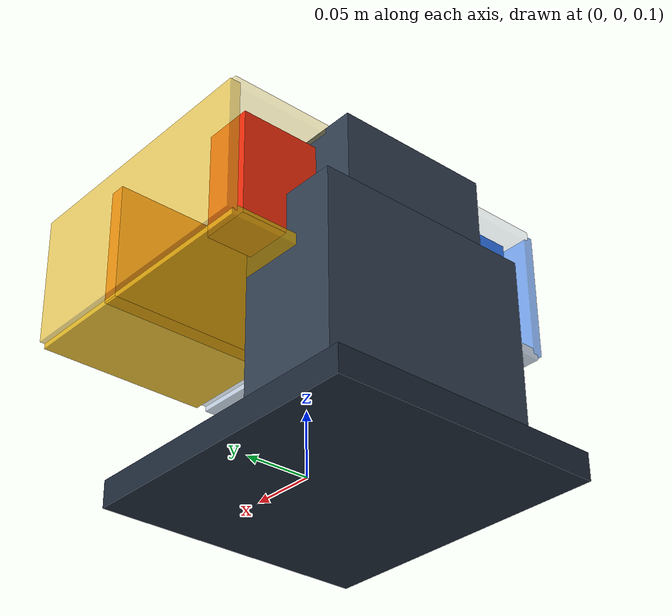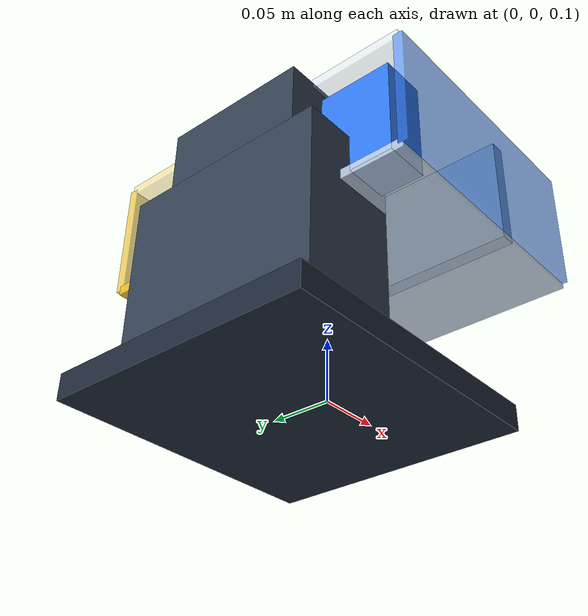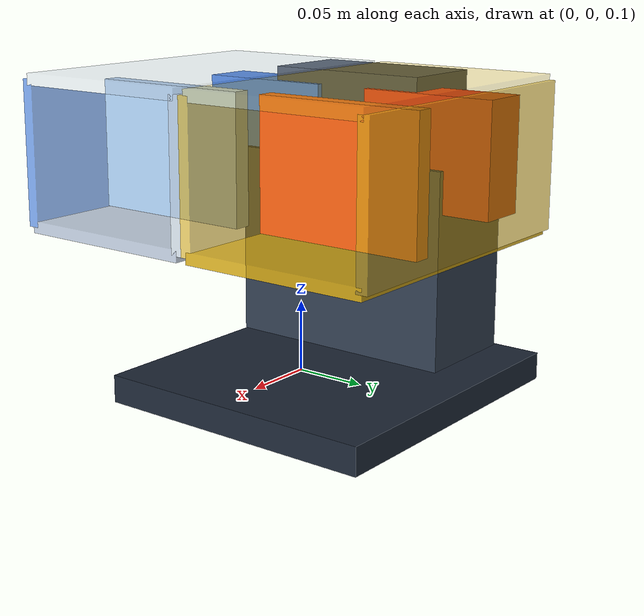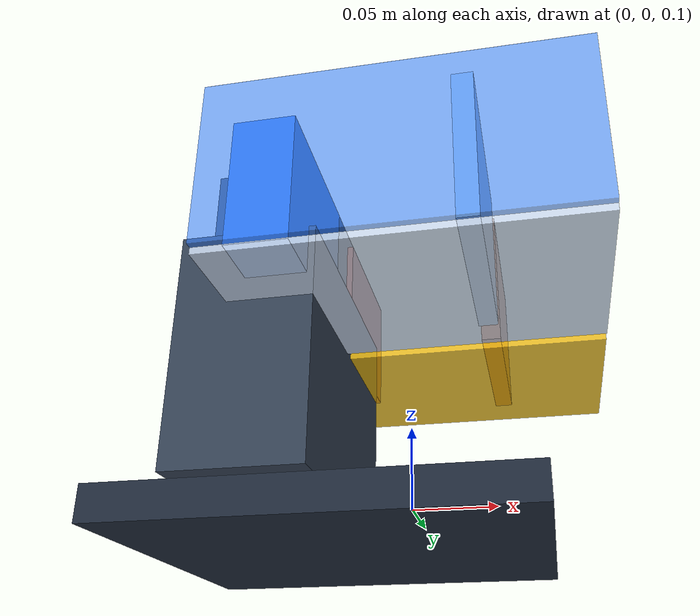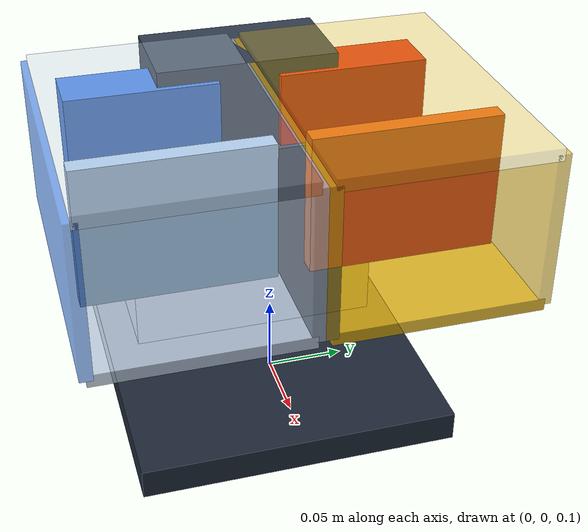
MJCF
<mujoco model="idc2026_user_compact_shooter">
  <compiler angle="radian" autolimits="true"/>

  <!--
    默认物理参数：
    contype/conaffinity 控制碰撞类别；condim=6 保留完整接触摩擦维度；
    friction 的三个数分别对应 MuJoCo 的切向、扭转和滚动摩擦参数。
    solref/solimp 控制接触约束的柔顺程度和收敛方式。
  -->
  <default>
    <geom contype="1" conaffinity="1" condim="6" priority="1"
          friction="0.35 0.02 0.002" solref="0.008 1"
          solimp="0.96 0.99 0.001 0.5 2"/>
    <joint damping="0.08" armature="0.001"/>
  </default>

  <worldbody>
    <!--
      mount_root 没有 joint，因此它相对于 Go2 base_link 是刚性固定的。
      这也是参赛机构的合法挂载根。下面的所有 body 都是它的子 body，
      所以它们会一起随 Go2 的平移和旋转运动。
    -->
    <body name="mount_root" pos="0 0 0">
      <!-- 底板和支架：把机构的质量、碰撞和视觉连接传回 Go2。 -->
      <geom name="mount_plate" type="box" pos="-0.035 0 0.085"
            size="0.115 0.105 0.010" mass="0.060"
            contype="0" conaffinity="0" rgba="0.12 0.16 0.22 1"/>
      <geom name="mount_bracket" type="box" pos="-0.080 0 0.175"
            size="0.040 0.085 0.070" mass="0.035"
            contype="0" conaffinity="0" rgba="0.20 0.25 0.32 1"/>
      <!--
        实体桅杆：连接 base_link 和云台铰链。它不仅是视觉上的支柱，也把
        云台的质量和推球反作用力通过真实刚体链传回 Go2，避免机构看起来
        像漂浮在机器狗旁边。
      -->
      <geom name="turret_mast" type="box" pos="-0.080 0 0.245"
            size="0.032 0.060 0.060" mass="0.045"
            contype="0" conaffinity="0" rgba="0.20 0.25 0.32 1"/>

      <!--
        两级云台：
        turret_pitch_joint 绕局部 Y 轴俯仰，决定球路高度；
        turret_yaw_joint 绕局部 Z 轴偏航，决定球路水平左右方向。
        两个 joint 都有范围、阻尼和 armature，范围会由 compiler 自动限制。
      -->
      <body name="turret_pitch_body" pos="-0.080 0 0.255">
        <joint name="turret_pitch_joint" type="hinge" axis="0 1 0"
               range="-0.75 1.00" damping="0.25" armature="0.006"/>
        <geom name="pitch_hub" type="cylinder" pos="0 0 0"
              size="0.032 0.020" mass="0.025"
              contype="0" conaffinity="0" rgba="0.18 0.40 0.62 1"/>

        <body name="turret_yaw_body" pos="0 0 0">
          <joint name="turret_yaw_joint" type="hinge" axis="0 0 1"
                 range="-3.00 3.00" damping="0.35" armature="0.010"/>
          <geom name="yaw_hub" type="cylinder" pos="0 0 0"
                size="0.030 0.014" mass="0.020"
                contype="0" conaffinity="0" rgba="0.18 0.40 0.62 1"/>

          <!--
            两个发射管固定在偏航云台上。开口距离转轴很短，保证机构紧凑；
            yellow/white 只是两条物理通道的名字，不代表本次 reset 时目标
            一定在固定槽位，目标颜色由官方 observation 决定。
          -->
          <body name="yellow_launcher" pos="0 0.070 0">
            <!-- 黄色通道的底板、顶板和两侧导向壁。顶板透明且不参与碰撞，
                 方便在 viewer 中看到球；底板和侧壁形成真实接触边界。 -->
            <geom name="yellow_tube_floor" type="box" pos="0.095 0 -0.050"
                  size="0.105 0.066 0.004" mass="0.008"
                  friction="0 0 0"
                  rgba="0.92 0.73 0.10 0.88"/>
            <geom name="yellow_tube_roof" type="box" pos="0.095 0 0.050"
                  size="0.105 0.066 0.004" mass="0.006"
                  friction="0 0 0"
                  contype="0" conaffinity="0" rgba="0.92 0.73 0.10 0.32"/>
            <geom name="yellow_tube_left" type="box" pos="0.095 0.066 0"
                  size="0.105 0.004 0.050" mass="0.006"
                  friction="0 0 0"
                  rgba="0.92 0.73 0.10 0.62"/>
            <geom name="yellow_tube_right" type="box" pos="0.095 -0.066 0"
                  size="0.105 0.004 0.050" mass="0.006"
                  friction="0 0 0"
                  rgba="0.92 0.73 0.10 0.62"/>
            <!--
              site 是官方 reset 放置 yellow_1/yellow_2 的参考点。它不是
              关节，也不会在运行时“吸住”球；reset 后球就是普通 free body。
            -->
            <site name="yellow_slot" type="sphere" pos="0.060 0 0"
                  size="0.006" rgba="1 0.2 0 0.35"/>
            <body name="yellow_pusher_body" pos="0.0 0 0">
              <!-- 推杆沿局部 +X 平移，把球从通道后方推向开口。 -->
              <joint name="yellow_pusher_joint" type="slide" axis="1 0 0"
                     range="0 0.230" damping="0.10" armature="0.001"/>
              <geom name="yellow_pusher_plate" type="box" pos="0.018 0 0"
                    size="0.018 0.050 0.040" mass="0.012"
                    rgba="0.95 0.18 0.05 1"/>
            </body>
            <!--
              挡门沿局部 +Z 抬起。它位于球释放点后方；如果太靠前，抬门时
              可能直接撞球，把球打向目标上沿。当前后移后，推杆先预压、再
              抬门、最后推进，形成较低的物理弹道。
            -->
            <body name="yellow_gate_body" pos="0.130 0 0">
              <joint name="yellow_gate_joint" type="slide" axis="0 0 1"
                     range="0 0.280" damping="0.18" armature="0.002"/>
              <geom name="yellow_gate_pin" type="box" pos="0 0 0"
                    size="0.006 0.060 0.045" mass="0.006"
                    rgba="1.00 0.40 0.08 0.94"/>
            </body>
          </body>

          <body name="white_launcher" pos="0 -0.070 0">
            <!-- 白色通道与黄色通道结构相同，只是横向位置和颜色不同。 -->
            <geom name="white_tube_floor" type="box" pos="0.095 0 -0.050"
                  size="0.105 0.066 0.004" mass="0.008"
                  friction="0 0 0"
                  rgba="0.80 0.86 0.94 0.88"/>
            <geom name="white_tube_roof" type="box" pos="0.095 0 0.050"
                  size="0.105 0.066 0.004" mass="0.006"
                  friction="0 0 0"
                  contype="0" conaffinity="0" rgba="0.80 0.86 0.94 0.32"/>
            <geom name="white_tube_left" type="box" pos="0.095 0.066 0"
                  size="0.105 0.004 0.050" mass="0.006"
                  friction="0 0 0"
                  rgba="0.80 0.86 0.94 0.62"/>
            <geom name="white_tube_right" type="box" pos="0.095 -0.066 0"
                  size="0.105 0.004 0.050" mass="0.006"
                  friction="0 0 0"
                  rgba="0.20 0.48 0.95 0.62"/>
            <!-- reset 时白球通过这个 site 放入通道；运行中 site 不控制球。 -->
            <site name="white_slot" type="sphere" pos="0.060 0 0"
                  size="0.006" rgba="0.2 0.4 1 0.35"/>
            <body name="white_pusher_body" pos="0.0 0 0">
              <!-- 白色通道的实体推杆，控制器名称为 user_white_pusher。 -->
              <joint name="white_pusher_joint" type="slide" axis="1 0 0"
                     range="0 0.230" damping="0.10" armature="0.001"/>
              <geom name="white_pusher_plate" type="box" pos="0.018 0 0"
                    size="0.018 0.050 0.040" mass="0.012"
                    rgba="0.20 0.48 0.95 1"/>
            </body>
            <body name="white_gate_body" pos="0.130 0 0">
              <!-- 白色通道的挡门，控制器名称为 user_white_gate。 -->
              <joint name="white_gate_joint" type="slide" axis="0 0 1"
                     range="0 0.280" damping="0.18" armature="0.002"/>
              <geom name="white_gate_pin" type="box" pos="0 0 0"
                    size="0.006 0.060 0.045" mass="0.006"
                    rgba="0.72 0.86 1.00 0.94"/>
            </body>
          </body>
        </body>
      </body>
    </body>
  </worldbody>

  <actuator>
    <!-- 云台角度控制：控制器在 AIM_* 阶段持续发送目标 yaw/pitch。 -->
    <position name="turret_yaw" joint="turret_yaw_joint"
              kp="800" kv="24" ctrllimited="true" ctrlrange="-3.00 3.00"
              forcelimited="true" forcerange="-60 60"/>
    <position name="turret_pitch" joint="turret_pitch_joint"
              kp="600" kv="20" ctrllimited="true" ctrlrange="-0.75 1.00"
              forcelimited="true" forcerange="-45 45"/>
    <!-- 挡门位置控制：0 为关闭，GATE_OPEN 附近为打开。 -->
    <position name="yellow_gate" joint="yellow_gate_joint"
              kp="800" kv="24" ctrllimited="true" ctrlrange="0 0.280"
              forcelimited="true" forcerange="-35 35"/>
    <position name="white_gate" joint="white_gate_joint"
              kp="800" kv="24" ctrllimited="true" ctrlrange="0 0.280"
              forcelimited="true" forcerange="-35 35"/>
    <!-- 推杆位置控制：0 为收回，PUSH_STROKE 为发射后的前伸位置。 -->
    <position name="yellow_pusher" joint="yellow_pusher_joint"
              kp="2250" kv="24" ctrllimited="true" ctrlrange="0 0.230"
              forcelimited="true" forcerange="-347.175 347.175"/>
    <position name="white_pusher" joint="white_pusher_joint"
              kp="2250" kv="24" ctrllimited="true" ctrlrange="0 0.230"
              forcelimited="true" forcerange="-347.175 347.175"/>
  </actuator>
</mujoco>
